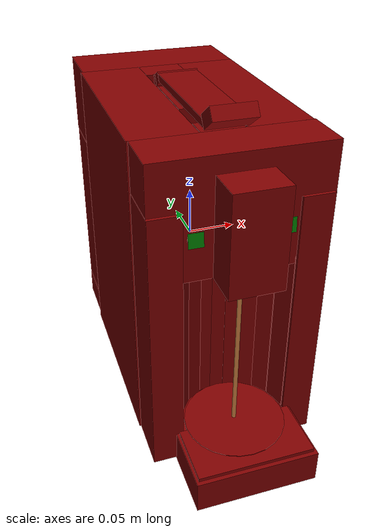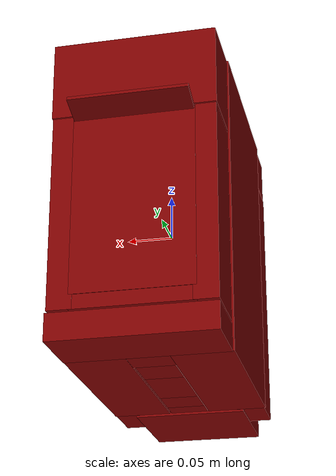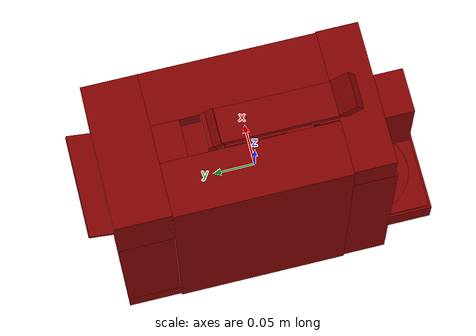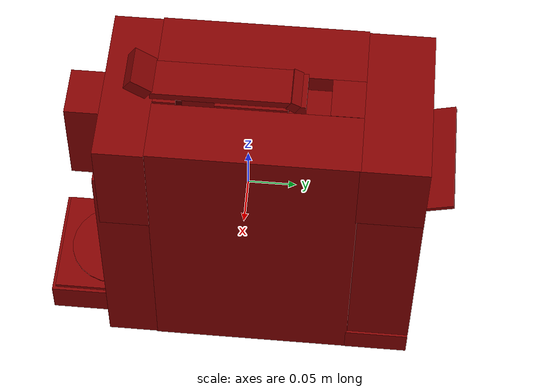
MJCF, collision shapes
<?xml version='1.0' encoding='UTF-8'?>
<mujoco model="model">
  <compiler angle="radian"/>
  <asset>
    <mesh file="visuals/Body001.obj" name="Body001_vis"/>
    <mesh file="visuals/Button001.obj" name="Button001_vis"/>
    <mesh file="visuals/Button002.obj" name="Button002_vis"/>
    <mesh file="visuals/Container001_Clear.obj" name="Container001_Clear_vis"/>
    <mesh file="visuals/Lid001.obj" name="Lid001_vis"/>
    <mesh file="visuals/Lid002.obj" name="Lid002_vis"/>
    <texture file="visuals/T_BC001.png" name="Body001_material" type="2d"/>
    <material name="Body001_material" rgba="1 1 1 1.0" texture="Body001_material" shininess="0.4472135901451111" specular="0.3103448502657381"/>
    <texture file="visuals/T_BC001.png" name="Button001_material" type="2d"/>
    <material name="Button001_material" rgba="1 1 1 1.0" texture="Button001_material" shininess="0.4472135901451111" specular="0.3103448502657381"/>
    <texture file="visuals/T_BC001.png" name="Button002_material" type="2d"/>
    <material name="Button002_material" rgba="1 1 1 1.0" texture="Button002_material" shininess="0.4472135901451111" specular="0.3103448502657381"/>
    <texture file="visuals/T_BC001.png" name="Container001_Clear_material" type="2d"/>
    <material name="Container001_Clear_material" rgba="1 1 1 0.20000000298023224" texture="Container001_Clear_material" shininess="0.4472135901451111" specular="0.3103448502657381"/>
    <texture file="visuals/T_BC001.png" name="Lid001_material" type="2d"/>
    <material name="Lid001_material" rgba="1 1 1 1.0" texture="Lid001_material" shininess="0.4472135901451111" specular="0.3103448502657381"/>
    <texture file="visuals/T_BC001.png" name="Lid002_material" type="2d"/>
    <material name="Lid002_material" rgba="1 1 1 1.0" texture="Lid002_material" shininess="0.4472135901451111" specular="0.3103448502657381"/>
  </asset>
  <default>
    <default class="visual">
      <geom conaffinity="0" contype="0" group="1" type="mesh"/>
    </default>
    <default class="collision">
      <geom group="0" rgba="0.5 0 0 0.5"/>
    </default>
    <default class="spawn">
      <geom group="0" rgba="1 1 1 0.5" contype="0" conaffinity="0"/>
      <site group="0" rgba="1 1 1 0.5"/>
    </default>
    <default class="region">
      <geom group="1" conaffinity="0" contype="0" rgba="0 1 0 0"/>
    </default>
  </default>
  <worldbody>
    <body>
      <body name="object">
        <geom class="collision" type="box" pos="0.041521646082401276 -0.14924761652946472 0.07976897805929184" size="0.007393122650682926 0.007393122650682926 0.00016141714877448976" quat="0.7335702180862427 0.6796136498451233 0.0 0.0" name="start_button_2" rgba="0.0 0.5 0 0.5"/>
        <geom class="collision" type="box" pos="-0.04395478963851929 -0.1491979956626892 0.07972873747348785" size="0.00719800777733326 0.00719800777733326 0.00015715711924713105" quat="0.7335702180862427 0.6796136498451233 0.0 0.0" name="start_button_1" rgba="0.0 0.5 0 0.5"/>
        <site rgba="0 0 0 0" size="0.009999999776482582 0.009999999776482582" pos="2.7553527615964413e-05 -0.14589552581310272 -0.1483422815799713" name="receptacle_place_site"/>
        <site type="cylinder" rgba="0.8 0.5 0.25 1" size="0.0022287750616669655 0.09207730740308762" pos="-1.5826553863007575e-06 -0.14559608697891235 -0.06269937753677368" name="coffee_liquid"/>
        <geom mesh="Body001_vis" type="mesh" solimp="0.998 0.998 0.001" solref="0.001 1" density="100" friction="0.95 0.3 0.1" class="visual" material="Body001_material"/>
        <geom class="collision" type="box" pos="0.05483103170990944 0.01086521614342928 -0.012700791470706463" size="0.03213648125529289 0.10443587601184845 0.16483241319656372" quat="1.0 0.0 0.0 0.0"/>
        <geom class="collision" type="box" pos="0.0005718916654586792 0.147954061627388 0.10871289670467377" size="0.08639802038669586 0.03393780440092087 0.04341338574886322" quat="1.0 0.0 0.0 0.0"/>
        <geom class="collision" type="box" pos="0.0005718916654586792 0.147954061627388 -0.16334860026836395" size="0.08639780431985855 0.03393774852156639 0.014562089927494526" quat="1.0 0.0 0.0 0.0"/>
        <geom class="collision" type="box" pos="0.0012128176167607307 -0.11826339364051819 0.09355045855045319" size="0.08703851699829102 0.025190791115164757 0.05857560783624649" quat="1.0 0.0 0.0 0.0"/>
        <geom class="collision" type="box" pos="0.0007630687323398888 -0.1612166166305542 0.08491600304841995" size="0.026632247492671013 0.019756220281124115 0.0499410443007946" quat="1.0 0.0 0.0 0.0"/>
        <geom class="collision" type="box" pos="0.07047788798809052 -0.11997554451227188 -0.03670117259025574" size="0.01580260694026947 0.02690175734460354 0.14067260921001434" quat="1.0 0.0 0.0 0.0"/>
        <geom class="collision" type="box" pos="-0.07029619067907333 -0.11997554451227188 -0.03670117259025574" size="0.01580258086323738 0.02690170332789421 0.14067238569259644" quat="1.0 0.0 0.0 0.0"/>
        <geom class="collision" type="box" pos="0.0002451632171869278 -0.1540745347738266 -0.16225318610668182" size="0.06227794662117958 0.05907795950770378 0.017422188073396683" quat="1.0 0.0 0.0 0.0"/>
        <geom class="collision" type="box" pos="-0.04304921627044678 -0.11217567324638367 -0.049819402396678925" size="0.002111277775838971 0.009520554915070534 0.09257686883211136" quat="0.9456663131713867 0.0 0.0 -0.32513874769210815"/>
        <geom class="collision" type="box" pos="-0.029372986406087875 -0.10002004355192184 -0.049819402396678925" size="0.002111278008669615 0.009520555846393108 0.09257686883211136" quat="0.8752167820930481 0.0 0.0 -0.48373085260391235"/>
        <geom class="collision" type="box" pos="-0.05311882868409157 -0.13193857669830322 -0.049819402396678925" size="0.002111277775838971 0.011616204865276814 0.09257686883211136" quat="0.9887627959251404 0.0 0.0 -0.14949272572994232"/>
        <geom class="collision" type="box" pos="-0.014678837731480598 -0.093245729804039 -0.049819402396678925" size="0.0021112775430083275 0.006706615909934044 0.09257686883211136" quat="0.7893626093864441 0.0 0.0 -0.6139272451400757"/>
        <geom class="collision" type="box" pos="0.014151519164443016 -0.093245729804039 -0.049819402396678925" size="0.0021112775430083275 0.006706615909934044 0.09257686883211136" quat="5.959521942600077e-08 0.7893626093864441 0.6139272451400757 4.6350216109658504e-08"/>
        <geom class="collision" type="box" pos="0.052591510117053986 -0.13193857669830322 -0.049819402396678925" size="0.002111277775838971 0.011616204865276814 0.09257686883211136" quat="7.464951323754576e-08 0.9887627959251404 0.14949272572994232 1.1286391377041127e-08"/>
        <geom class="collision" type="box" pos="0.028845667839050293 -0.10002004355192184 -0.049819402396678925" size="0.002111278008669615 0.009520555846393108 0.09257686883211136" quat="6.607703539884824e-08 0.8752167820930481 0.48373085260391235 3.652065672099525e-08"/>
        <geom class="collision" type="box" pos="0.042521897703409195 -0.11217567324638367 -0.049819402396678925" size="0.002111277775838971 0.009520554915070534 0.09257686883211136" quat="7.139581725823518e-08 0.9456663131713867 0.32513874769210815 2.454730463341548e-08"/>
        <geom class="collision" type="cylinder" pos="1.890258863568306e-05 -0.1455819457769394 0.030843369662761688" size="0.005631211679428816 0.00418976042419672" quat="1.0 0.0 0.0 0.0"/>
        <geom class="collision" type="box" pos="-0.055187854915857315 0.01086521614342928 -0.012700791470706463" size="0.03258334845304489 0.10443397611379623 0.1648286134004593" quat="1.0 0.0 0.0 0.0"/>
        <geom class="collision" type="box" pos="-2.3215136025100946e-05 0.09869560599327087 -0.012649188749492168" size="0.022603895515203476 0.01660218834877014 0.16487978398799896" quat="1.0 0.0 0.0 0.0"/>
        <geom class="collision" type="box" pos="-0.0004887162358500063 -0.0816938579082489 -0.012700791470706463" size="0.021134700626134872 0.011353759095072746 0.16482774913311005" quat="1.0 0.0 0.0 0.0"/>
        <geom class="collision" type="cylinder" pos="-4.36524351243861e-05 -0.08560947328805923 0.15482300519943237" size="0.004332991782575846 0.0026338533498346806" quat="1.0 0.0 0.0 0.0"/>
        <geom class="collision" type="box" pos="-0.0004887162358500063 -0.05013461410999298 -0.047920189797878265" size="0.021134646609425545 0.02080012485384941 0.12960699200630188" quat="1.0 0.0 0.0 0.0"/>
        <geom class="collision" type="box" pos="-0.0004887162358500063 0.00451347790658474 -0.012649188749492168" size="0.02113453857600689 0.03624352440237999 0.16487807035446167" quat="1.0 0.0 0.0 0.0"/>
        <geom class="collision" type="box" pos="-0.0004887162358500063 0.06195952743291855 -0.02134713903069496" size="0.02113448642194271 0.021215934306383133 0.15617969632148743" quat="1.0 0.0 0.0 0.0"/>
        <body name="Button001">
          <joint axis="0.0 1.0 0.0" pos="-0.0438682958483696 -0.1478213369846344 0.07962437719106674" limited="true" name="Button001_joint" range="0.0 0.001" type="slide" damping="1" frictionloss="1" armature=".01" stiffness="0.05"/>
          <geom mesh="Button001_vis" type="mesh" solimp="0.998 0.998 0.001" solref="0.001 1" density="100" friction="0.95 0.3 0.1" class="visual" material="Button001_material"/>
          <geom class="collision" type="cylinder" pos="-0.04395478963851929 -0.14782583713531494 0.07964693009853363" size="0.007393122650682926 0.0010407278314232826" quat="0.7335702180862427 0.6796136498451233 0.0 0.0"/>
        </body>
        <body name="Button002">
          <joint axis="0.0 1.0 0.0" pos="0.041478194296360016 -0.1476559340953827 0.07963225990533829" limited="true" name="Button002_joint" range="0.0 0.001" type="slide" damping="1" frictionloss="1" armature=".01" stiffness="0.05"/>
          <geom mesh="Button002_vis" type="mesh" solimp="0.998 0.998 0.001" solref="0.001 1" density="100" friction="0.95 0.3 0.1" class="visual" material="Button002_material"/>
          <geom class="collision" type="cylinder" pos="0.041521646082401276 -0.14782583713531494 0.07964693009853363" size="0.007393122650682926 0.0010407278314232826" quat="0.7335702180862427 0.6796136498451233 0.0 0.0"/>
        </body>
        <body name="Container001_Clear">
          <joint axis="0.0 1.0 0.0" pos="0.00014163926243782043 0.16447263956069946 -0.03767413645982742" limited="true" name="Container001_Clear_joint" range="0.0 0.1" type="slide" damping="1" frictionloss="1" armature=".01" stiffness="0.05"/>
          <geom mesh="Container001_Clear_vis" type="mesh" solimp="0.998 0.998 0.001" solref="0.001 1" density="100" friction="0.95 0.3 0.1" class="visual" material="Container001_Clear_material"/>
          <geom class="collision" type="box" pos="-0.0006542730843648314 0.12012236565351486 -0.043547652661800385" size="0.06280041486024857 0.0031915376894176006 0.08770028501749039" quat="1.0 0.0 0.0 0.0"/>
          <geom class="collision" type="box" pos="-6.000284702167846e-05 0.17887572944164276 -0.033691152930259705" size="0.06359614431858063 0.0031915411818772554 0.09755689650774002" quat="1.0 0.0 0.0 0.0"/>
          <geom class="collision" type="box" pos="-6.000284702167846e-05 0.14944231510162354 -0.13907954096794128" size="0.06359626352787018 0.0323512926697731 0.007640213239938021" quat="1.0 0.0 0.0 0.0"/>
          <geom class="collision" type="box" pos="-0.07256615906953812 0.14889860153198242 -0.0413692332804203" size="0.012949570082128048 0.03306366875767708 0.10524367541074753" quat="1.0 0.0 0.0 0.0"/>
          <geom class="collision" type="box" pos="0.07261547446250916 0.14889860153198242 -0.0413692332804203" size="0.012949584983289242 0.033063724637031555 0.10524390637874603" quat="1.0 0.0 0.0 0.0"/>
          <geom class="collision" type="box" pos="-6.000284702167846e-05 0.19501475989818573 0.06517650187015533" size="0.0627746507525444 0.002157327951863408 0.016534388065338135" quat="0.8011945486068726 -0.5984039902687073 -1.3287237760477739e-16 6.1703615322642865e-24"/>
        </body>
        <body name="Lid001">
          <joint axis="0.0 0.0 1.0" pos="-0.00011871941387653351 -0.15218810737133026 -0.14333821833133698" limited="true" name="Lid001_joint" range="0.0 0.05" type="slide" damping="1" frictionloss="1" armature=".01" stiffness="0.05"/>
          <geom mesh="Lid001_vis" type="mesh" solimp="0.998 0.998 0.001" solref="0.001 1" density="100" friction="0.95 0.3 0.1" class="visual" material="Lid001_material"/>
          <geom class="collision" type="box" pos="-0.000229748897254467 -0.17905984818935394 -0.1425059288740158" size="0.059350863099098206 0.03043266385793686 0.0018753954209387302" quat="1.0 0.0 0.0 0.0"/>
          <geom class="collision" type="cylinder" pos="-2.3096799850463867e-07 -0.14679054915905 -0.14174321293830872" size="0.051376137882471085 0.001880196388810873" quat="1.0 0.0 0.0 0.0"/>
        </body>
        <body name="Lid002">
          <joint axis="-1.0 0.0 0.0" pos="1.0724179446697235e-05 0.05402713641524315 0.1389915943145752" limited="true" name="Lid002_joint" range="0.0 1.5707963267948966" type="hinge" damping="1" frictionloss="1" armature=".01" stiffness="0.05"/>
          <geom mesh="Lid002_vis" type="mesh" solimp="0.998 0.998 0.001" solref="0.001 1" density="100" friction="0.95 0.3 0.1" class="visual" material="Lid002_material"/>
          <geom class="collision" type="box" pos="-6.880152795929462e-05 -0.10641248524188995 0.16916309297084808" size="0.021242784336209297 0.012534745037555695 0.006864595226943493" quat="0.9543262720108032 -0.2987664043903351 0.0 0.0"/>
          <geom class="collision" type="box" pos="8.857253124006093e-05 -0.025493768975138664 0.16138213872909546" size="0.020989954471588135 0.06967625766992569 0.0038256049156188965" quat="1.0 0.0 0.0 0.0"/>
          <geom class="collision" type="box" pos="0.00019621889805421233 0.045541614294052124 0.1590382307767868" size="0.02147657237946987 0.005289072170853615 0.005734132137149572" quat="0.967244029045105 -0.2538483142852783 0.0 0.0"/>
          <geom class="collision" type="box" pos="0.00013159619993530214 0.05305780470371246 0.15378540754318237" size="0.02101021073758602 0.005044692661613226 0.006192960310727358" quat="1.0 0.0 0.0 0.0"/>
        </body>
        <geom class="region" name="reg_main" type="box" pos="1.862645149230957e-09 0.0 0.0" size="0.08553271740674973 0.2119445949792862 0.1795508712530136"/>
      </body>
    </body>
  </worldbody>
  <actuator>
    <motor name="Button001_joint_actuator" joint="Button001_joint" gear="0.5"/>
    <motor name="Button002_joint_actuator" joint="Button002_joint" gear="0.5"/>
    <motor name="Container001_Clear_joint_actuator" joint="Container001_Clear_joint" gear="10"/>
    <motor name="Lid001_joint_actuator" joint="Lid001_joint" gear="10"/>
    <motor name="Lid002_joint_actuator" joint="Lid002_joint" gear="10"/>
  </actuator>
</mujoco>
